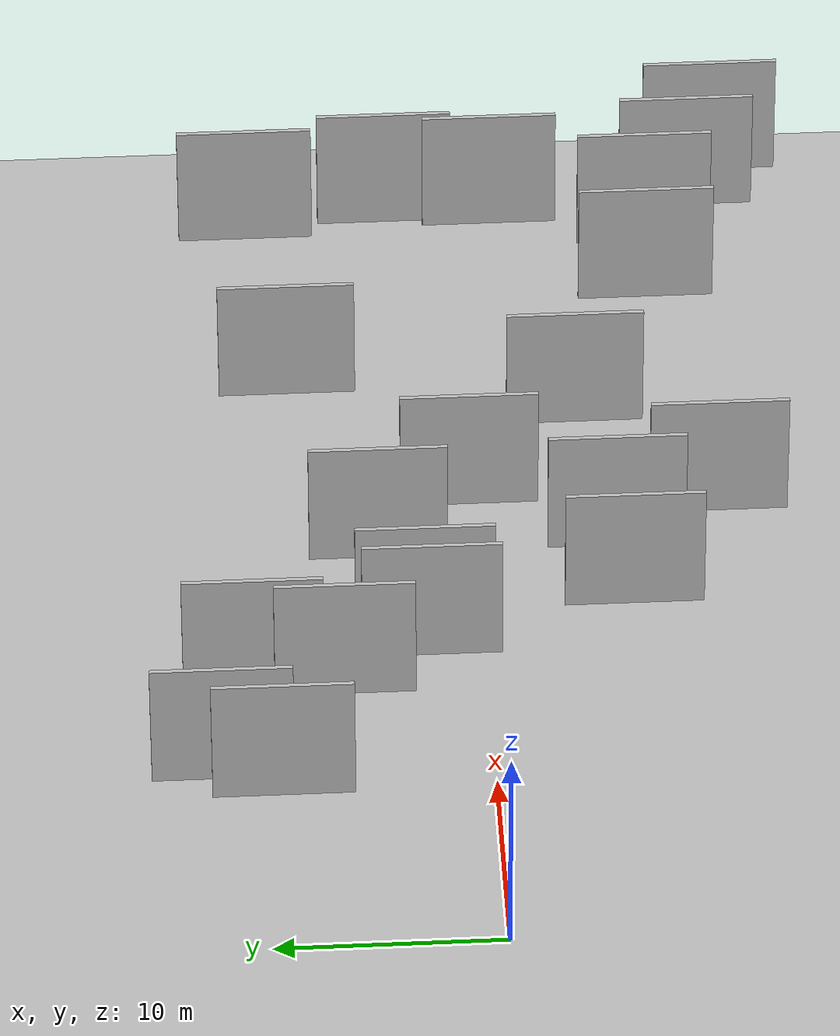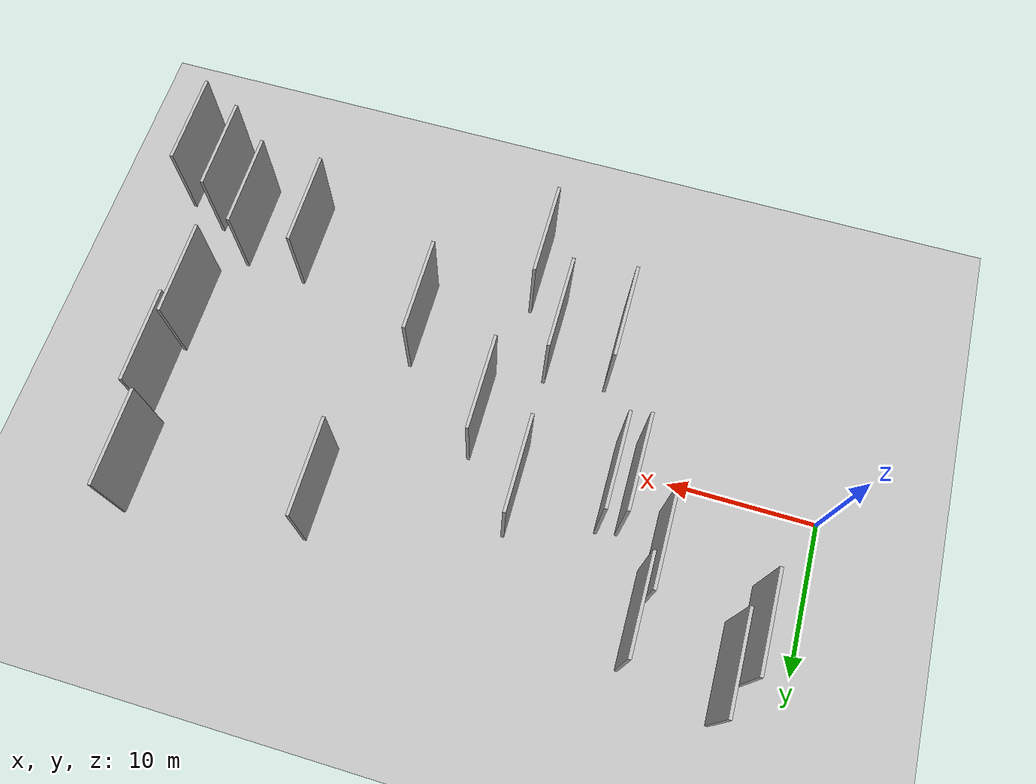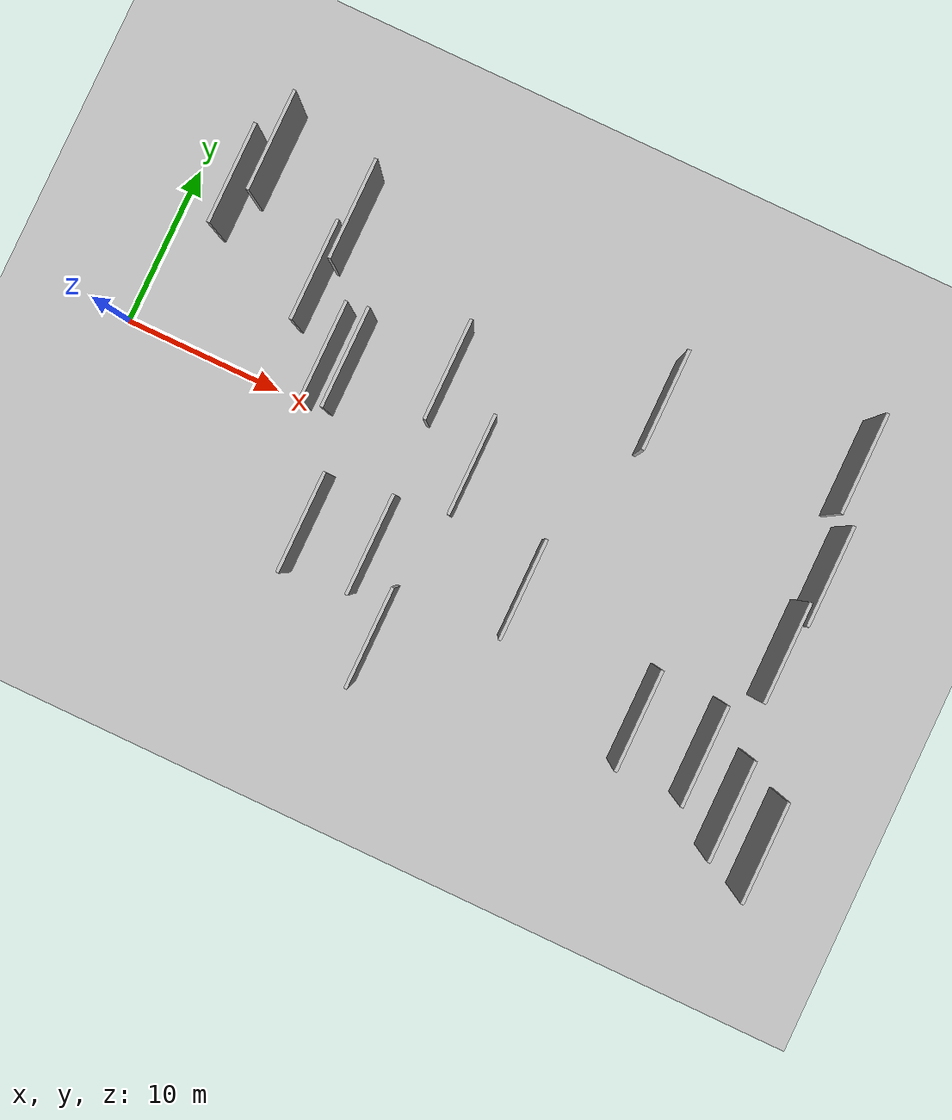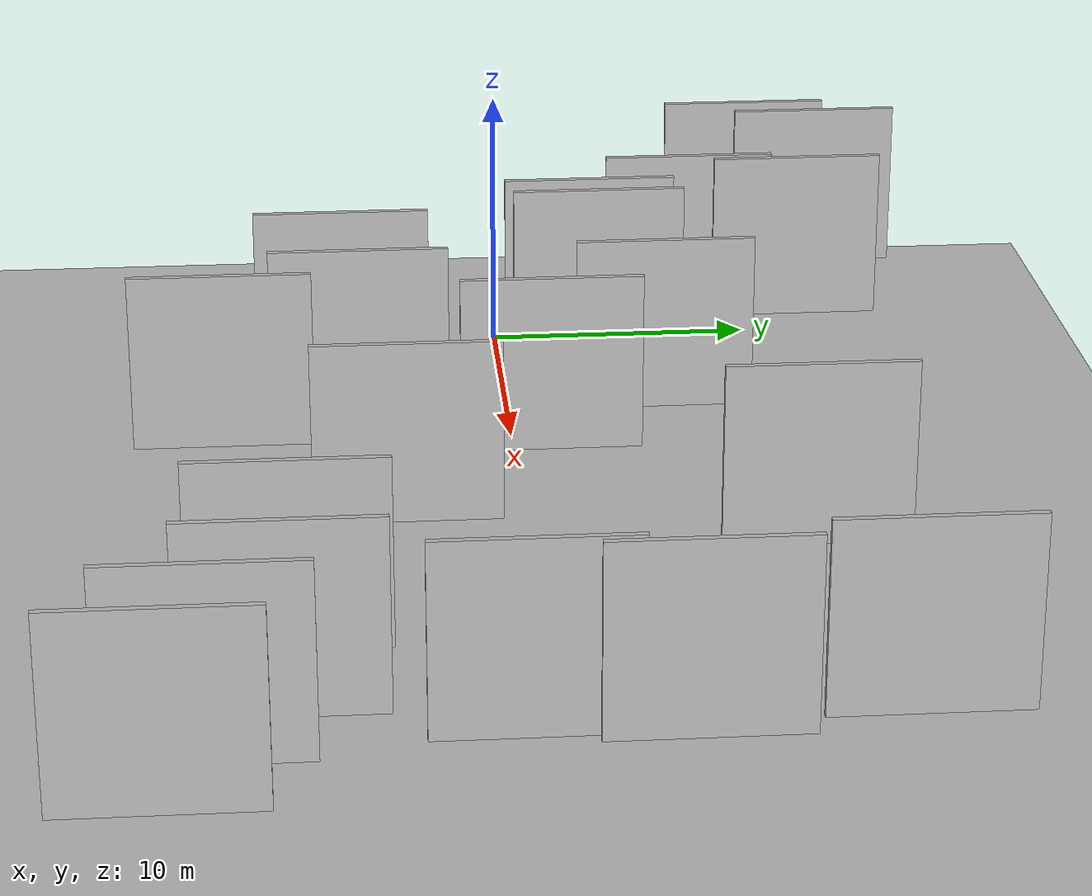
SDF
<?xml version="1.0" encoding="utf-8"?>

<sdf version="1.6">

   <world name="default">

      <gui fullscreen="0">

         <camera name="user_camera">

            <pose>-15 0 4.57585 0 0 0</pose>

            <view_controller>orbit</view_controller>

         </camera>

      </gui>

      <scene>

         <sky>

           <clouds>

             <speed>12</speed>

           </clouds>

         </sky>

         <ambient>0.4 0.4 0.4 1</ambient>

         <background>0.7 0.7 0.7 1</background>

         <shadows>1</shadows>

      </scene>

      <gravity>0 0 -9.8066</gravity>

      <magnetic_field>6e-06 2.3e-05 -4.2e-05</magnetic_field>

      <physics default="0" name="default_physics" type="ode">

         <ode>

            <solver>

               <type>quick</type>

               <iters>10</iters>

               <sor>1.0</sor>

               <use_dynamic_moi_rescaling>0</use_dynamic_moi_rescaling>

            </solver>

            <constraints>

               <cfm>0</cfm>

               <erp>0.2</erp>

               <contact_max_correcting_vel>100</contact_max_correcting_vel>

               <contact_surface_layer>0.001</contact_surface_layer>

            </constraints>

         </ode>

         <max_step_size>0.004</max_step_size>

         <real_time_factor>1</real_time_factor>

         <real_time_update_rate>250</real_time_update_rate>

      </physics>

      <light name="sun" type="directional">

         <cast_shadows>1</cast_shadows>

         <pose>0 0 10 0 0 0</pose>

         <diffuse>0.8 0.8 0.8 1</diffuse>

         <specular>0.2 0.2 0.2 1</specular>

         <attenuation>

            <range>1000</range>

            <constant>0.9</constant>

            <linear>0.01</linear>

            <quadratic>0.001</quadratic>

         </attenuation>

         <direction>-0.5 0.1 -0.9</direction>

      </light>

      <include>

         <name>ground_plane_1</name>

         <uri>model://HANNAS_ground_plane</uri>

         <pose>0 0 0  0 0 0</pose>

      </include>

      <include>

         <name>ground_plane_2</name>

         <uri>model://HANNAS_ground_plane</uri>

         <pose>100 0 0  0 0 0</pose>

      </include>

      <model name="HANNAS_wall_1">

         <static>1</static>

         <pose frame="">14.0424 2.8479 5.0 0.000000 0.000000 1.570796</pose>

         <link name="link">

            <pose frame="">0 0 3.00 0 0 0</pose>

            <collision name="collision">

               <geometry>

                  <box>

                     <size>6.00 0.2 6.00</size>

                  </box>

               </geometry>

               <max_contacts>10</max_contacts>

               <surface>

                  <contact>

                     <ode/>

                  </contact>

                  <bounce/>

                  <friction>

                     <torsional>

                        <ode/>

                     </torsional>

                     <ode/>

                  </friction>

               </surface>

            </collision>

            <visual name="visual">

               <cast_shadows>0</cast_shadows>

               <geometry>

                  <box>

                     <size>6.00 0.2 6.00</size>

                  </box>

               </geometry>

               <material>

                  <script>

                     <uri>model://HANNAS_wall/materials/scripts</uri>

                     <uri>model://HANNAS_wall/materials/textures</uri>

                     <name>vrc/HANNAS_wall</name>

                  </script>

               </material>

            </visual>

            <self_collide>0</self_collide>

            <enable_wind>0</enable_wind>

            <kinematic>0</kinematic>

         </link>

      </model>

      <model name="HANNAS_wall_2">

         <static>1</static>

         <pose frame="">45.8288 -11.6753 5.0 0.000000 0.000000 1.570796</pose>

         <link name="link">

            <pose frame="">0 0 3.00 0 0 0</pose>

            <collision name="collision">

               <geometry>

                  <box>

                     <size>6.00 0.2 6.00</size>

                  </box>

               </geometry>

               <max_contacts>10</max_contacts>

               <surface>

                  <contact>

                     <ode/>

                  </contact>

                  <bounce/>

                  <friction>

                     <torsional>

                        <ode/>

                     </torsional>

                     <ode/>

                  </friction>

               </surface>

            </collision>

            <visual name="visual">

               <cast_shadows>0</cast_shadows>

               <geometry>

                  <box>

                     <size>6.00 0.2 6.00</size>

                  </box>

               </geometry>

               <material>

                  <script>

                     <uri>model://HANNAS_wall/materials/scripts</uri>

                     <uri>model://HANNAS_wall/materials/textures</uri>

                     <name>vrc/HANNAS_wall</name>

                  </script>

               </material>

            </visual>

            <self_collide>0</self_collide>

            <enable_wind>0</enable_wind>

            <kinematic>0</kinematic>

         </link>

      </model>

      <model name="HANNAS_wall_3">

         <static>1</static>

         <pose frame="">22.7268 0.5014 5.0 0.000000 0.000000 1.570796</pose>

         <link name="link">

            <pose frame="">0 0 3.00 0 0 0</pose>

            <collision name="collision">

               <geometry>

                  <box>

                     <size>6.00 0.2 6.00</size>

                  </box>

               </geometry>

               <max_contacts>10</max_contacts>

               <surface>

                  <contact>

                     <ode/>

                  </contact>

                  <bounce/>

                  <friction>

                     <torsional>

                        <ode/>

                     </torsional>

                     <ode/>

                  </friction>

               </surface>

            </collision>

            <visual name="visual">

               <cast_shadows>0</cast_shadows>

               <geometry>

                  <box>

                     <size>6.00 0.2 6.00</size>

                  </box>

               </geometry>

               <material>

                  <script>

                     <uri>model://HANNAS_wall/materials/scripts</uri>

                     <uri>model://HANNAS_wall/materials/textures</uri>

                     <name>vrc/HANNAS_wall</name>

                  </script>

               </material>

            </visual>

            <self_collide>0</self_collide>

            <enable_wind>0</enable_wind>

            <kinematic>0</kinematic>

         </link>

      </model>

      <model name="HANNAS_wall_4">

         <static>1</static>

         <pose frame="">40.7246 -8.3697 5.0 0.000000 0.000000 1.570796</pose>

         <link name="link">

            <pose frame="">0 0 3.00 0 0 0</pose>

            <collision name="collision">

               <geometry>

                  <box>

                     <size>6.00 0.2 6.00</size>

                  </box>

               </geometry>

               <max_contacts>10</max_contacts>

               <surface>

                  <contact>

                     <ode/>

                  </contact>

                  <bounce/>

                  <friction>

                     <torsional>

                        <ode/>

                     </torsional>

                     <ode/>

                  </friction>

               </surface>

            </collision>

            <visual name="visual">

               <cast_shadows>0</cast_shadows>

               <geometry>

                  <box>

                     <size>6.00 0.2 6.00</size>

                  </box>

               </geometry>

               <material>

                  <script>

                     <uri>model://HANNAS_wall/materials/scripts</uri>

                     <uri>model://HANNAS_wall/materials/textures</uri>

                     <name>vrc/HANNAS_wall</name>

                  </script>

               </material>

            </visual>

            <self_collide>0</self_collide>

            <enable_wind>0</enable_wind>

            <kinematic>0</kinematic>

         </link>

      </model>

      <model name="HANNAS_wall_5">

         <static>1</static>

         <pose frame="">10.9628 10.3165 5.0 0.000000 0.000000 1.570796</pose>

         <link name="link">

            <pose frame="">0 0 3.00 0 0 0</pose>

            <collision name="collision">

               <geometry>

                  <box>

                     <size>6.00 0.2 6.00</size>

                  </box>

               </geometry>

               <max_contacts>10</max_contacts>

               <surface>

                  <contact>

                     <ode/>

                  </contact>

                  <bounce/>

                  <friction>

                     <torsional>

                        <ode/>

                     </torsional>

                     <ode/>

                  </friction>

               </surface>

            </collision>

            <visual name="visual">

               <cast_shadows>0</cast_shadows>

               <geometry>

                  <box>

                     <size>6.00 0.2 6.00</size>

                  </box>

               </geometry>

               <material>

                  <script>

                     <uri>model://HANNAS_wall/materials/scripts</uri>

                     <uri>model://HANNAS_wall/materials/textures</uri>

                     <name>vrc/HANNAS_wall</name>

                  </script>

               </material>

            </visual>

            <self_collide>0</self_collide>

            <enable_wind>0</enable_wind>

            <kinematic>0</kinematic>

         </link>

      </model>

      <model name="HANNAS_wall_6">

         <static>1</static>

         <pose frame="">36.7189 -8.1690 5.0 0.000000 0.000000 1.570796</pose>

         <link name="link">

            <pose frame="">0 0 3.00 0 0 0</pose>

            <collision name="collision">

               <geometry>

                  <box>

                     <size>6.00 0.2 6.00</size>

                  </box>

               </geometry>

               <max_contacts>10</max_contacts>

               <surface>

                  <contact>

                     <ode/>

                  </contact>

                  <bounce/>

                  <friction>

                     <torsional>

                        <ode/>

                     </torsional>

                     <ode/>

                  </friction>

               </surface>

            </collision>

            <visual name="visual">

               <cast_shadows>0</cast_shadows>

               <geometry>

                  <box>

                     <size>6.00 0.2 6.00</size>

                  </box>

               </geometry>

               <material>

                  <script>

                     <uri>model://HANNAS_wall/materials/scripts</uri>

                     <uri>model://HANNAS_wall/materials/textures</uri>

                     <name>vrc/HANNAS_wall</name>

                  </script>

               </material>

            </visual>

            <self_collide>0</self_collide>

            <enable_wind>0</enable_wind>

            <kinematic>0</kinematic>

         </link>

      </model>

      <model name="HANNAS_wall_7">

         <static>1</static>

         <pose frame="">43.2795 -10.4306 5.0 0.000000 0.000000 1.570796</pose>

         <link name="link">

            <pose frame="">0 0 3.00 0 0 0</pose>

            <collision name="collision">

               <geometry>

                  <box>

                     <size>6.00 0.2 6.00</size>

                  </box>

               </geometry>

               <max_contacts>10</max_contacts>

               <surface>

                  <contact>

                     <ode/>

                  </contact>

                  <bounce/>

                  <friction>

                     <torsional>

                        <ode/>

                     </torsional>

                     <ode/>

                  </friction>

               </surface>

            </collision>

            <visual name="visual">

               <cast_shadows>0</cast_shadows>

               <geometry>

                  <box>

                     <size>6.00 0.2 6.00</size>

                  </box>

               </geometry>

               <material>

                  <script>

                     <uri>model://HANNAS_wall/materials/scripts</uri>

                     <uri>model://HANNAS_wall/materials/textures</uri>

                     <name>vrc/HANNAS_wall</name>

                  </script>

               </material>

            </visual>

            <self_collide>0</self_collide>

            <enable_wind>0</enable_wind>

            <kinematic>0</kinematic>

         </link>

      </model>

      <model name="HANNAS_wall_8">

         <static>1</static>

         <pose frame="">19.3622 4.6089 5.0 0.000000 0.000000 1.570796</pose>

         <link name="link">

            <pose frame="">0 0 3.00 0 0 0</pose>

            <collision name="collision">

               <geometry>

                  <box>

                     <size>6.00 0.2 6.00</size>

                  </box>

               </geometry>

               <max_contacts>10</max_contacts>

               <surface>

                  <contact>

                     <ode/>

                  </contact>

                  <bounce/>

                  <friction>

                     <torsional>

                        <ode/>

                     </torsional>

                     <ode/>

                  </friction>

               </surface>

            </collision>

            <visual name="visual">

               <cast_shadows>0</cast_shadows>

               <geometry>

                  <box>

                     <size>6.00 0.2 6.00</size>

                  </box>

               </geometry>

               <material>

                  <script>

                     <uri>model://HANNAS_wall/materials/scripts</uri>

                     <uri>model://HANNAS_wall/materials/textures</uri>

                     <name>vrc/HANNAS_wall</name>

                  </script>

               </material>

            </visual>

            <self_collide>0</self_collide>

            <enable_wind>0</enable_wind>

            <kinematic>0</kinematic>

         </link>

      </model>

      <model name="HANNAS_wall_9">

         <static>1</static>

         <pose frame="">4.1986 9.2965 5.0 0.000000 0.000000 1.570796</pose>

         <link name="link">

            <pose frame="">0 0 3.00 0 0 0</pose>

            <collision name="collision">

               <geometry>

                  <box>

                     <size>6.00 0.2 6.00</size>

                  </box>

               </geometry>

               <max_contacts>10</max_contacts>

               <surface>

                  <contact>

                     <ode/>

                  </contact>

                  <bounce/>

                  <friction>

                     <torsional>

                        <ode/>

                     </torsional>

                     <ode/>

                  </friction>

               </surface>

            </collision>

            <visual name="visual">

               <cast_shadows>0</cast_shadows>

               <geometry>

                  <box>

                     <size>6.00 0.2 6.00</size>

                  </box>

               </geometry>

               <material>

                  <script>

                     <uri>model://HANNAS_wall/materials/scripts</uri>

                     <uri>model://HANNAS_wall/materials/textures</uri>

                     <name>vrc/HANNAS_wall</name>

                  </script>

               </material>

            </visual>

            <self_collide>0</self_collide>

            <enable_wind>0</enable_wind>

            <kinematic>0</kinematic>

         </link>

      </model>

      <model name="HANNAS_wall_10">

         <static>1</static>

         <pose frame="">42.4123 -1.4762 5.0 0.000000 0.000000 1.570796</pose>

         <link name="link">

            <pose frame="">0 0 3.00 0 0 0</pose>

            <collision name="collision">

               <geometry>

                  <box>

                     <size>6.00 0.2 6.00</size>

                  </box>

               </geometry>

               <max_contacts>10</max_contacts>

               <surface>

                  <contact>

                     <ode/>

                  </contact>

                  <bounce/>

                  <friction>

                     <torsional>

                        <ode/>

                     </torsional>

                     <ode/>

                  </friction>

               </surface>

            </collision>

            <visual name="visual">

               <cast_shadows>0</cast_shadows>

               <geometry>

                  <box>

                     <size>6.00 0.2 6.00</size>

                  </box>

               </geometry>

               <material>

                  <script>

                     <uri>model://HANNAS_wall/materials/scripts</uri>

                     <uri>model://HANNAS_wall/materials/textures</uri>

                     <name>vrc/HANNAS_wall</name>

                  </script>

               </material>

            </visual>

            <self_collide>0</self_collide>

            <enable_wind>0</enable_wind>

            <kinematic>0</kinematic>

         </link>

      </model>

      <model name="HANNAS_wall_11">

         <static>1</static>

         <pose frame="">12.8124 2.6195 5.0 0.000000 0.000000 1.570796</pose>

         <link name="link">

            <pose frame="">0 0 3.00 0 0 0</pose>

            <collision name="collision">

               <geometry>

                  <box>

                     <size>6.00 0.2 6.00</size>

                  </box>

               </geometry>

               <max_contacts>10</max_contacts>

               <surface>

                  <contact>

                     <ode/>

                  </contact>

                  <bounce/>

                  <friction>

                     <torsional>

                        <ode/>

                     </torsional>

                     <ode/>

                  </friction>

               </surface>

            </collision>

            <visual name="visual">

               <cast_shadows>0</cast_shadows>

               <geometry>

                  <box>

                     <size>6.00 0.2 6.00</size>

                  </box>

               </geometry>

               <material>

                  <script>

                     <uri>model://HANNAS_wall/materials/scripts</uri>

                     <uri>model://HANNAS_wall/materials/textures</uri>

                     <name>vrc/HANNAS_wall</name>

                  </script>

               </material>

            </visual>

            <self_collide>0</self_collide>

            <enable_wind>0</enable_wind>

            <kinematic>0</kinematic>

         </link>

      </model>

      <model name="HANNAS_wall_12">

         <static>1</static>

         <pose frame="">42.7904 3.2546 5.0 0.000000 0.000000 1.570796</pose>

         <link name="link">

            <pose frame="">0 0 3.00 0 0 0</pose>

            <collision name="collision">

               <geometry>

                  <box>

                     <size>6.00 0.2 6.00</size>

                  </box>

               </geometry>

               <max_contacts>10</max_contacts>

               <surface>

                  <contact>

                     <ode/>

                  </contact>

                  <bounce/>

                  <friction>

                     <torsional>

                        <ode/>

                     </torsional>

                     <ode/>

                  </friction>

               </surface>

            </collision>

            <visual name="visual">

               <cast_shadows>0</cast_shadows>

               <geometry>

                  <box>

                     <size>6.00 0.2 6.00</size>

                  </box>

               </geometry>

               <material>

                  <script>

                     <uri>model://HANNAS_wall/materials/scripts</uri>

                     <uri>model://HANNAS_wall/materials/textures</uri>

                     <name>vrc/HANNAS_wall</name>

                  </script>

               </material>

            </visual>

            <self_collide>0</self_collide>

            <enable_wind>0</enable_wind>

            <kinematic>0</kinematic>

         </link>

      </model>

      <model name="HANNAS_wall_13">

         <static>1</static>

         <pose frame="">5.3571 11.8123 5.0 0.000000 0.000000 1.570796</pose>

         <link name="link">

            <pose frame="">0 0 3.00 0 0 0</pose>

            <collision name="collision">

               <geometry>

                  <box>

                     <size>6.00 0.2 6.00</size>

                  </box>

               </geometry>

               <max_contacts>10</max_contacts>

               <surface>

                  <contact>

                     <ode/>

                  </contact>

                  <bounce/>

                  <friction>

                     <torsional>

                        <ode/>

                     </torsional>

                     <ode/>

                  </friction>

               </surface>

            </collision>

            <visual name="visual">

               <cast_shadows>0</cast_shadows>

               <geometry>

                  <box>

                     <size>6.00 0.2 6.00</size>

                  </box>

               </geometry>

               <material>

                  <script>

                     <uri>model://HANNAS_wall/materials/scripts</uri>

                     <uri>model://HANNAS_wall/materials/textures</uri>

                     <name>vrc/HANNAS_wall</name>

                  </script>

               </material>

            </visual>

            <self_collide>0</self_collide>

            <enable_wind>0</enable_wind>

            <kinematic>0</kinematic>

         </link>

      </model>

      <model name="HANNAS_wall_14">

         <static>1</static>

         <pose frame="">15.7115 -6.2378 5.0 0.000000 0.000000 1.570796</pose>

         <link name="link">

            <pose frame="">0 0 3.00 0 0 0</pose>

            <collision name="collision">

               <geometry>

                  <box>

                     <size>6.00 0.2 6.00</size>

                  </box>

               </geometry>

               <max_contacts>10</max_contacts>

               <surface>

                  <contact>

                     <ode/>

                  </contact>

                  <bounce/>

                  <friction>

                     <torsional>

                        <ode/>

                     </torsional>

                     <ode/>

                  </friction>

               </surface>

            </collision>

            <visual name="visual">

               <cast_shadows>0</cast_shadows>

               <geometry>

                  <box>

                     <size>6.00 0.2 6.00</size>

                  </box>

               </geometry>

               <material>

                  <script>

                     <uri>model://HANNAS_wall/materials/scripts</uri>

                     <uri>model://HANNAS_wall/materials/textures</uri>

                     <name>vrc/HANNAS_wall</name>

                  </script>

               </material>

            </visual>

            <self_collide>0</self_collide>

            <enable_wind>0</enable_wind>

            <kinematic>0</kinematic>

         </link>

      </model>

      <model name="HANNAS_wall_15">

         <static>1</static>

         <pose frame="">19.5924 -5.7333 5.0 0.000000 0.000000 1.570796</pose>

         <link name="link">

            <pose frame="">0 0 3.00 0 0 0</pose>

            <collision name="collision">

               <geometry>

                  <box>

                     <size>6.00 0.2 6.00</size>

                  </box>

               </geometry>

               <max_contacts>10</max_contacts>

               <surface>

                  <contact>

                     <ode/>

                  </contact>

                  <bounce/>

                  <friction>

                     <torsional>

                        <ode/>

                     </torsional>

                     <ode/>

                  </friction>

               </surface>

            </collision>

            <visual name="visual">

               <cast_shadows>0</cast_shadows>

               <geometry>

                  <box>

                     <size>6.00 0.2 6.00</size>

                  </box>

               </geometry>

               <material>

                  <script>

                     <uri>model://HANNAS_wall/materials/scripts</uri>

                     <uri>model://HANNAS_wall/materials/textures</uri>

                     <name>vrc/HANNAS_wall</name>

                  </script>

               </material>

            </visual>

            <self_collide>0</self_collide>

            <enable_wind>0</enable_wind>

            <kinematic>0</kinematic>

         </link>

      </model>

      <model name="HANNAS_wall_16">

         <static>1</static>

         <pose frame="">10.4952 6.4349 5.0 0.000000 0.000000 1.570796</pose>

         <link name="link">

            <pose frame="">0 0 3.00 0 0 0</pose>

            <collision name="collision">

               <geometry>

                  <box>

                     <size>6.00 0.2 6.00</size>

                  </box>

               </geometry>

               <max_contacts>10</max_contacts>

               <surface>

                  <contact>

                     <ode/>

                  </contact>

                  <bounce/>

                  <friction>

                     <torsional>

                        <ode/>

                     </torsional>

                     <ode/>

                  </friction>

               </surface>

            </collision>

            <visual name="visual">

               <cast_shadows>0</cast_shadows>

               <geometry>

                  <box>

                     <size>6.00 0.2 6.00</size>

                  </box>

               </geometry>

               <material>

                  <script>

                     <uri>model://HANNAS_wall/materials/scripts</uri>

                     <uri>model://HANNAS_wall/materials/textures</uri>

                     <name>vrc/HANNAS_wall</name>

                  </script>

               </material>

            </visual>

            <self_collide>0</self_collide>

            <enable_wind>0</enable_wind>

            <kinematic>0</kinematic>

         </link>

      </model>

      <model name="HANNAS_wall_17">

         <static>1</static>

         <pose frame="">28.0987 -4.4418 5.0 0.000000 0.000000 1.570796</pose>

         <link name="link">

            <pose frame="">0 0 3.00 0 0 0</pose>

            <collision name="collision">

               <geometry>

                  <box>

                     <size>6.00 0.2 6.00</size>

                  </box>

               </geometry>

               <max_contacts>10</max_contacts>

               <surface>

                  <contact>

                     <ode/>

                  </contact>

                  <bounce/>

                  <friction>

                     <torsional>

                        <ode/>

                     </torsional>

                     <ode/>

                  </friction>

               </surface>

            </collision>

            <visual name="visual">

               <cast_shadows>0</cast_shadows>

               <geometry>

                  <box>

                     <size>6.00 0.2 6.00</size>

                  </box>

               </geometry>

               <material>

                  <script>

                     <uri>model://HANNAS_wall/materials/scripts</uri>

                     <uri>model://HANNAS_wall/materials/textures</uri>

                     <name>vrc/HANNAS_wall</name>

                  </script>

               </material>

            </visual>

            <self_collide>0</self_collide>

            <enable_wind>0</enable_wind>

            <kinematic>0</kinematic>

         </link>

      </model>

      <model name="HANNAS_wall_18">

         <static>1</static>

         <pose frame="">41.8855 9.5534 5.0 0.000000 0.000000 1.570796</pose>

         <link name="link">

            <pose frame="">0 0 3.00 0 0 0</pose>

            <collision name="collision">

               <geometry>

                  <box>

                     <size>6.00 0.2 6.00</size>

                  </box>

               </geometry>

               <max_contacts>10</max_contacts>

               <surface>

                  <contact>

                     <ode/>

                  </contact>

                  <bounce/>

                  <friction>

                     <torsional>

                        <ode/>

                     </torsional>

                     <ode/>

                  </friction>

               </surface>

            </collision>

            <visual name="visual">

               <cast_shadows>0</cast_shadows>

               <geometry>

                  <box>

                     <size>6.00 0.2 6.00</size>

                  </box>

               </geometry>

               <material>

                  <script>

                     <uri>model://HANNAS_wall/materials/scripts</uri>

                     <uri>model://HANNAS_wall/materials/textures</uri>

                     <name>vrc/HANNAS_wall</name>

                  </script>

               </material>

            </visual>

            <self_collide>0</self_collide>

            <enable_wind>0</enable_wind>

            <kinematic>0</kinematic>

         </link>

      </model>

      <model name="HANNAS_wall_19">

         <static>1</static>

         <pose frame="">21.6958 -10.3048 5.0 0.000000 0.000000 1.570796</pose>

         <link name="link">

            <pose frame="">0 0 3.00 0 0 0</pose>

            <collision name="collision">

               <geometry>

                  <box>

                     <size>6.00 0.2 6.00</size>

                  </box>

               </geometry>

               <max_contacts>10</max_contacts>

               <surface>

                  <contact>

                     <ode/>

                  </contact>

                  <bounce/>

                  <friction>

                     <torsional>

                        <ode/>

                     </torsional>

                     <ode/>

                  </friction>

               </surface>

            </collision>

            <visual name="visual">

               <cast_shadows>0</cast_shadows>

               <geometry>

                  <box>

                     <size>6.00 0.2 6.00</size>

                  </box>

               </geometry>

               <material>

                  <script>

                     <uri>model://HANNAS_wall/materials/scripts</uri>

                     <uri>model://HANNAS_wall/materials/textures</uri>

                     <name>vrc/HANNAS_wall</name>

                  </script>

               </material>

            </visual>

            <self_collide>0</self_collide>

            <enable_wind>0</enable_wind>

            <kinematic>0</kinematic>

         </link>

      </model>

      <model name="HANNAS_wall_20">

         <static>1</static>

         <pose frame="">30.7339 8.1198 5.0 0.000000 0.000000 1.570796</pose>

         <link name="link">

            <pose frame="">0 0 3.00 0 0 0</pose>

            <collision name="collision">

               <geometry>

                  <box>

                     <size>6.00 0.2 6.00</size>

                  </box>

               </geometry>

               <max_contacts>10</max_contacts>

               <surface>

                  <contact>

                     <ode/>

                  </contact>

                  <bounce/>

                  <friction>

                     <torsional>

                        <ode/>

                     </torsional>

                     <ode/>

                  </friction>

               </surface>

            </collision>

            <visual name="visual">

               <cast_shadows>0</cast_shadows>

               <geometry>

                  <box>

                     <size>6.00 0.2 6.00</size>

                  </box>

               </geometry>

               <material>

                  <script>

                     <uri>model://HANNAS_wall/materials/scripts</uri>

                     <uri>model://HANNAS_wall/materials/textures</uri>

                     <name>vrc/HANNAS_wall</name>

                  </script>

               </material>

            </visual>

            <self_collide>0</self_collide>

            <enable_wind>0</enable_wind>

            <kinematic>0</kinematic>

         </link>

      </model>

   </world>

</sdf>

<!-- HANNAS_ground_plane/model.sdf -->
<sdf version="1.4">
<model name="HANNAS_ground_plane">
  <static>true</static>
    <link name="link">
      <collision name="collision">
        <geometry>
          <plane>
            <normal>0 0 1</normal>
            <size>1000 1000</size>
          </plane>
        </geometry>
        <surface>
          <friction>
            <ode>
              <mu>100</mu>
              <mu2>50</mu2>
            </ode>
          </friction>
        </surface>
      </collision>
      <visual name="visual">
        <cast_shadows>false</cast_shadows>
        <geometry>
          <plane>
            <normal>0 0 1</normal>
            <size>1000 1000</size>
          </plane>
        </geometry>
        <material>
          <script>
            <uri>model://HANNAS_ground_plane/materials/scripts/HANNAS_ground_plane.material</uri>
	    <uri>model://HANNAS_ground_plane/materials/textures</uri>
            <name>HANNASGroundPlane/Image</name>
          </script>
        </material>
      </visual>
    </link>
  </model>
</sdf>
